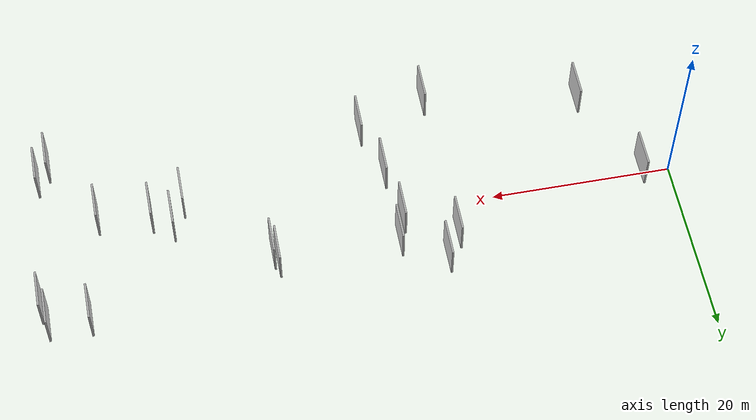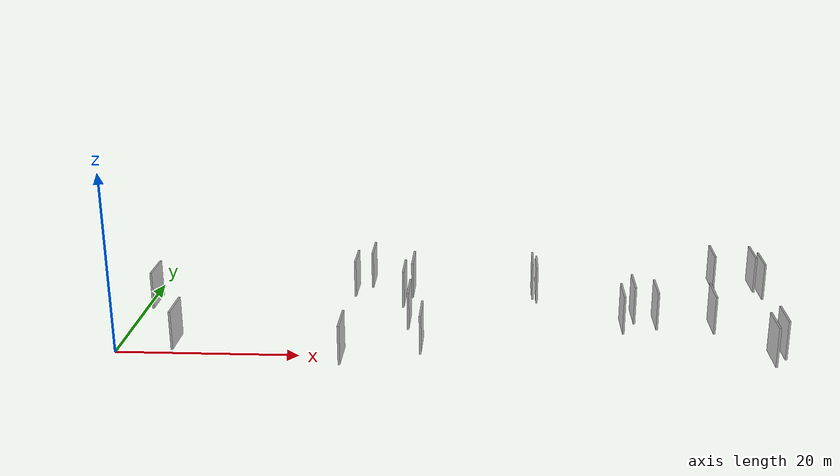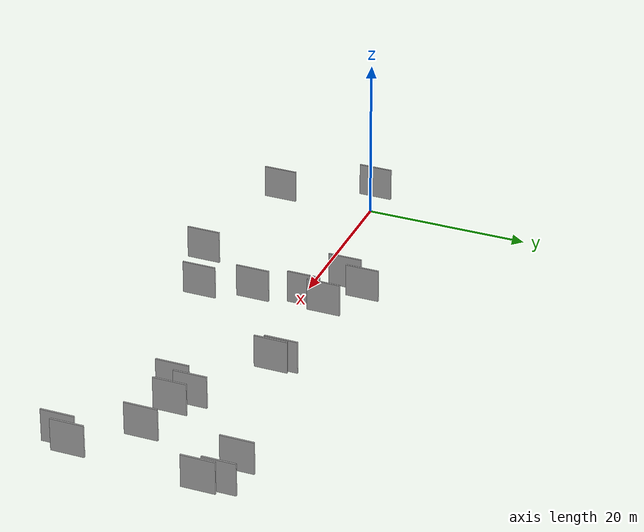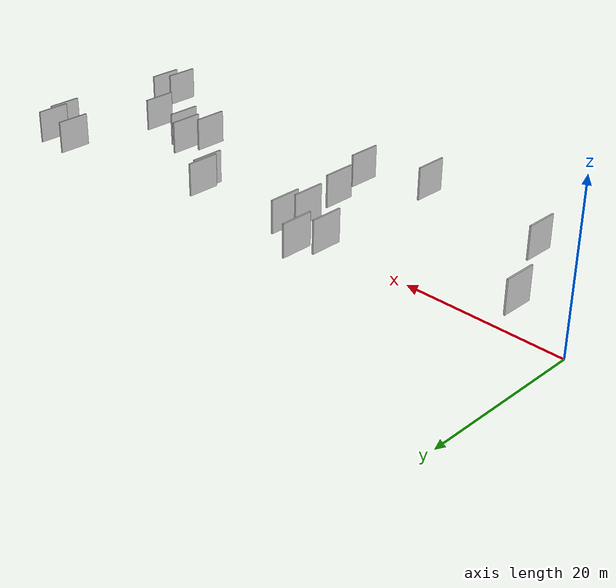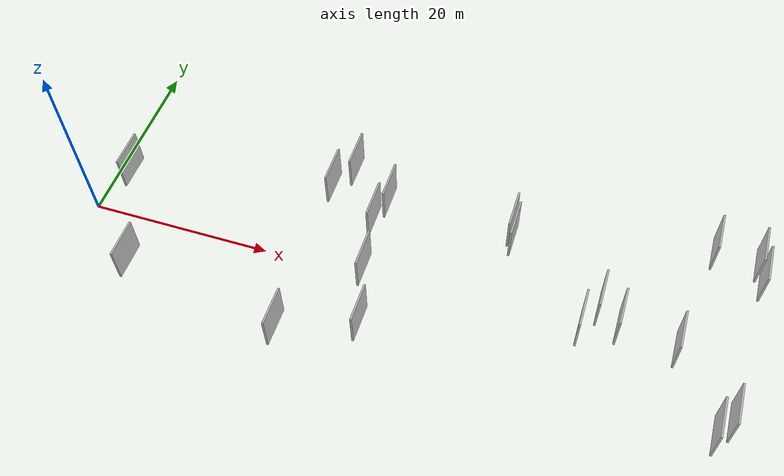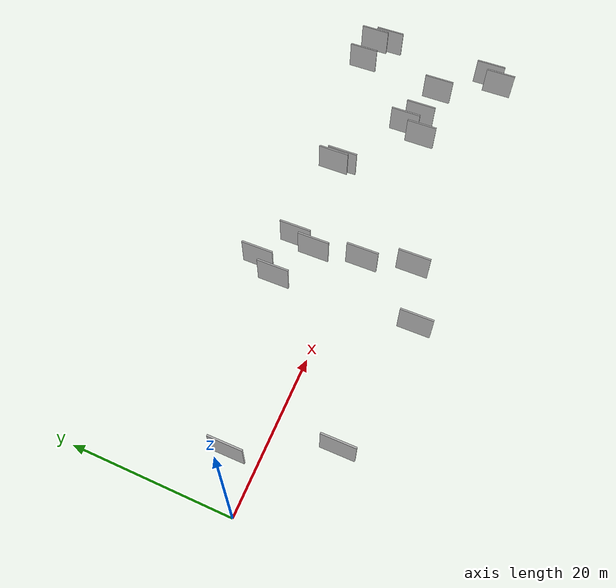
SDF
<sdf version="1.6">
 <world name="default">
  <scene>
   <sky><clouds><speed>12</speed></clouds></sky>
   <ambient>0.4 0.4 0.4 1</ambient>
   <background>0.7 0.7 0.7 1</background>
   <shadows>1</shadows>
  </scene>
  <gravity>0 0 -9.8066</gravity>
  <magnetic_field>6e-06 2.3e-05 -4.2e-05</magnetic_field>
  <physics default="0" name="default_physics" type="ode">
   <ode>
    <solver>
     <type>quick</type>
     <iters>10</iters>
     <sor>1.0</sor>
     <use_dynamic_moi_rescaling>0</use_dynamic_moi_rescaling>
    </solver>
    <constraints>
     <cfm>0</cfm>
     <erp>0.2</erp>
     <contact_max_correcting_vel>100</contact_max_correcting_vel>
     <contact_surface_layer>0.001</contact_surface_layer>
    </constraints>
   </ode>
   <max_step_size>0.004</max_step_size>
   <real_time_factor>1</real_time_factor>
   <real_time_update_rate>250</real_time_update_rate>
  </physics>
  <light name="sun" type="directional">
   <pose>0 0 10 0 0 0</pose>
   <diffuse>0.8 0.8 0.8 1</diffuse>
   <specular>0.2 0.2 0.2 1</specular>
   <attenuation>
    <range>1000</range>
    <constant>0.9</constant>
    <linear>0.01</linear>
    <quadratic>0.001</quadratic>
   </attenuation>
   <direction>-0.5 0.1 -0.9</direction>
  </light>
  <model name="grey_wall_1">
   <static>1</static>
   <pose>53.8403 -2.2216 5.0 0.000000 0.000000 1.570796</pose>
   <link name="link">
    <pose>0 0 2.00 0 0 0</pose>
    <collision name="collision"><geometry><box><size>4.00 0.2 4.00</size></box></geometry></collision>
    <visual name="visual">
     <cast_shadows>0</cast_shadows>
     <geometry><box><size>4.00 0.2 4.00</size></box></geometry>
     <material>
      <script>
       <uri>model://HANNAS_wall/materials/scripts</uri>
       <uri>model://HANNAS_wall/materials/textures</uri>
       <name>vrc/HANNAS_wall</name>
      </script>
     </material>
    </visual>
   </link>
  </model>
  <model name="grey_wall_2">
   <static>1</static>
   <pose>27.2654 9.5845 5.0 0.000000 0.000000 1.570796</pose>
   <link name="link">
    <pose>0 0 2.00 0 0 0</pose>
    <collision name="collision"><geometry><box><size>4.00 0.2 4.00</size></box></geometry></collision>
    <visual name="visual">
     <cast_shadows>0</cast_shadows>
     <geometry><box><size>4.00 0.2 4.00</size></box></geometry>
     <material>
      <script>
       <uri>model://HANNAS_wall/materials/scripts</uri>
       <uri>model://HANNAS_wall/materials/textures</uri>
       <name>vrc/HANNAS_wall</name>
      </script>
     </material>
    </visual>
   </link>
  </model>
  <model name="grey_wall_3">
   <static>1</static>
   <pose>33.6420 -7.9944 5.0 0.000000 0.000000 1.570796</pose>
   <link name="link">
    <pose>0 0 2.00 0 0 0</pose>
    <collision name="collision"><geometry><box><size>4.00 0.2 4.00</size></box></geometry></collision>
    <visual name="visual">
     <cast_shadows>0</cast_shadows>
     <geometry><box><size>4.00 0.2 4.00</size></box></geometry>
     <material>
      <script>
       <uri>model://HANNAS_wall/materials/scripts</uri>
       <uri>model://HANNAS_wall/materials/textures</uri>
       <name>vrc/HANNAS_wall</name>
      </script>
     </material>
    </visual>
   </link>
  </model>
  <model name="grey_wall_4">
   <static>1</static>
   <pose>26.0785 -10.7905 5.0 0.000000 0.000000 1.570796</pose>
   <link name="link">
    <pose>0 0 2.00 0 0 0</pose>
    <collision name="collision"><geometry><box><size>4.00 0.2 4.00</size></box></geometry></collision>
    <visual name="visual">
     <cast_shadows>0</cast_shadows>
     <geometry><box><size>4.00 0.2 4.00</size></box></geometry>
     <material>
      <script>
       <uri>model://HANNAS_wall/materials/scripts</uri>
       <uri>model://HANNAS_wall/materials/textures</uri>
       <name>vrc/HANNAS_wall</name>
      </script>
     </material>
    </visual>
   </link>
  </model>
  <model name="grey_wall_5">
   <static>1</static>
   <pose>9.2703 -8.0717 5.0 0.000000 0.000000 1.570796</pose>
   <link name="link">
    <pose>0 0 2.00 0 0 0</pose>
    <collision name="collision"><geometry><box><size>4.00 0.2 4.00</size></box></geometry></collision>
    <visual name="visual">
     <cast_shadows>0</cast_shadows>
     <geometry><box><size>4.00 0.2 4.00</size></box></geometry>
     <material>
      <script>
       <uri>model://HANNAS_wall/materials/scripts</uri>
       <uri>model://HANNAS_wall/materials/textures</uri>
       <name>vrc/HANNAS_wall</name>
      </script>
     </material>
    </visual>
   </link>
  </model>
  <model name="grey_wall_6">
   <static>1</static>
   <pose>45.3317 5.8396 5.0 0.000000 0.000000 1.570796</pose>
   <link name="link">
    <pose>0 0 2.00 0 0 0</pose>
    <collision name="collision"><geometry><box><size>4.00 0.2 4.00</size></box></geometry></collision>
    <visual name="visual">
     <cast_shadows>0</cast_shadows>
     <geometry><box><size>4.00 0.2 4.00</size></box></geometry>
     <material>
      <script>
       <uri>model://HANNAS_wall/materials/scripts</uri>
       <uri>model://HANNAS_wall/materials/textures</uri>
       <name>vrc/HANNAS_wall</name>
      </script>
     </material>
    </visual>
   </link>
  </model>
  <model name="grey_wall_7">
   <static>1</static>
   <pose>55.2078 0.4994 5.0 0.000000 0.000000 1.570796</pose>
   <link name="link">
    <pose>0 0 2.00 0 0 0</pose>
    <collision name="collision"><geometry><box><size>4.00 0.2 4.00</size></box></geometry></collision>
    <visual name="visual">
     <cast_shadows>0</cast_shadows>
     <geometry><box><size>4.00 0.2 4.00</size></box></geometry>
     <material>
      <script>
       <uri>model://HANNAS_wall/materials/scripts</uri>
       <uri>model://HANNAS_wall/materials/textures</uri>
       <name>vrc/HANNAS_wall</name>
      </script>
     </material>
    </visual>
   </link>
  </model>
  <model name="grey_wall_8">
   <static>1</static>
   <pose>4.5023 2.3879 5.0 0.000000 0.000000 1.570796</pose>
   <link name="link">
    <pose>0 0 2.00 0 0 0</pose>
    <collision name="collision"><geometry><box><size>4.00 0.2 4.00</size></box></geometry></collision>
    <visual name="visual">
     <cast_shadows>0</cast_shadows>
     <geometry><box><size>4.00 0.2 4.00</size></box></geometry>
     <material>
      <script>
       <uri>model://HANNAS_wall/materials/scripts</uri>
       <uri>model://HANNAS_wall/materials/textures</uri>
       <name>vrc/HANNAS_wall</name>
      </script>
     </material>
    </visual>
   </link>
  </model>
  <model name="grey_wall_9">
   <static>1</static>
   <pose>25.6572 6.8252 5.0 0.000000 0.000000 1.570796</pose>
   <link name="link">
    <pose>0 0 2.00 0 0 0</pose>
    <collision name="collision"><geometry><box><size>4.00 0.2 4.00</size></box></geometry></collision>
    <visual name="visual">
     <cast_shadows>0</cast_shadows>
     <geometry><box><size>4.00 0.2 4.00</size></box></geometry>
     <material>
      <script>
       <uri>model://HANNAS_wall/materials/scripts</uri>
       <uri>model://HANNAS_wall/materials/textures</uri>
       <name>vrc/HANNAS_wall</name>
      </script>
     </material>
    </visual>
   </link>
  </model>
  <model name="grey_wall_10">
   <static>1</static>
   <pose>63.0235 -1.7782 5.0 0.000000 0.000000 1.570796</pose>
   <link name="link">
    <pose>0 0 2.00 0 0 0</pose>
    <collision name="collision"><geometry><box><size>4.00 0.2 4.00</size></box></geometry></collision>
    <visual name="visual">
     <cast_shadows>0</cast_shadows>
     <geometry><box><size>4.00 0.2 4.00</size></box></geometry>
     <material>
      <script>
       <uri>model://HANNAS_wall/materials/scripts</uri>
       <uri>model://HANNAS_wall/materials/textures</uri>
       <name>vrc/HANNAS_wall</name>
      </script>
     </material>
    </visual>
   </link>
  </model>
  <model name="grey_wall_11">
   <static>1</static>
   <pose>69.8757 7.9384 5.0 0.000000 0.000000 1.570796</pose>
   <link name="link">
    <pose>0 0 2.00 0 0 0</pose>
    <collision name="collision"><geometry><box><size>4.00 0.2 4.00</size></box></geometry></collision>
    <visual name="visual">
     <cast_shadows>0</cast_shadows>
     <geometry><box><size>4.00 0.2 4.00</size></box></geometry>
     <material>
      <script>
       <uri>model://HANNAS_wall/materials/scripts</uri>
       <uri>model://HANNAS_wall/materials/textures</uri>
       <name>vrc/HANNAS_wall</name>
      </script>
     </material>
    </visual>
   </link>
  </model>
  <model name="grey_wall_12">
   <static>1</static>
   <pose>68.8496 -7.6963 5.0 0.000000 0.000000 1.570796</pose>
   <link name="link">
    <pose>0 0 2.00 0 0 0</pose>
    <collision name="collision"><geometry><box><size>4.00 0.2 4.00</size></box></geometry></collision>
    <visual name="visual">
     <cast_shadows>0</cast_shadows>
     <geometry><box><size>4.00 0.2 4.00</size></box></geometry>
     <material>
      <script>
       <uri>model://HANNAS_wall/materials/scripts</uri>
       <uri>model://HANNAS_wall/materials/textures</uri>
       <name>vrc/HANNAS_wall</name>
      </script>
     </material>
    </visual>
   </link>
  </model>
  <model name="grey_wall_13">
   <static>1</static>
   <pose>32.0308 -2.0219 5.0 0.000000 0.000000 1.570796</pose>
   <link name="link">
    <pose>0 0 2.00 0 0 0</pose>
    <collision name="collision"><geometry><box><size>4.00 0.2 4.00</size></box></geometry></collision>
    <visual name="visual">
     <cast_shadows>0</cast_shadows>
     <geometry><box><size>4.00 0.2 4.00</size></box></geometry>
     <material>
      <script>
       <uri>model://HANNAS_wall/materials/scripts</uri>
       <uri>model://HANNAS_wall/materials/textures</uri>
       <name>vrc/HANNAS_wall</name>
      </script>
     </material>
    </visual>
   </link>
  </model>
  <model name="grey_wall_14">
   <static>1</static>
   <pose>67.5826 -9.4188 5.0 0.000000 0.000000 1.570796</pose>
   <link name="link">
    <pose>0 0 2.00 0 0 0</pose>
    <collision name="collision"><geometry><box><size>4.00 0.2 4.00</size></box></geometry></collision>
    <visual name="visual">
     <cast_shadows>0</cast_shadows>
     <geometry><box><size>4.00 0.2 4.00</size></box></geometry>
     <material>
      <script>
       <uri>model://HANNAS_wall/materials/scripts</uri>
       <uri>model://HANNAS_wall/materials/textures</uri>
       <name>vrc/HANNAS_wall</name>
      </script>
     </material>
    </visual>
   </link>
  </model>
  <model name="grey_wall_15">
   <static>1</static>
   <pose>57.3546 -0.9714 5.0 0.000000 0.000000 1.570796</pose>
   <link name="link">
    <pose>0 0 2.00 0 0 0</pose>
    <collision name="collision"><geometry><box><size>4.00 0.2 4.00</size></box></geometry></collision>
    <visual name="visual">
     <cast_shadows>0</cast_shadows>
     <geometry><box><size>4.00 0.2 4.00</size></box></geometry>
     <material>
      <script>
       <uri>model://HANNAS_wall/materials/scripts</uri>
       <uri>model://HANNAS_wall/materials/textures</uri>
       <name>vrc/HANNAS_wall</name>
      </script>
     </material>
    </visual>
   </link>
  </model>
  <model name="grey_wall_16">
   <static>1</static>
   <pose>44.9164 6.8927 5.0 0.000000 0.000000 1.570796</pose>
   <link name="link">
    <pose>0 0 2.00 0 0 0</pose>
    <collision name="collision"><geometry><box><size>4.00 0.2 4.00</size></box></geometry></collision>
    <visual name="visual">
     <cast_shadows>0</cast_shadows>
     <geometry><box><size>4.00 0.2 4.00</size></box></geometry>
     <material>
      <script>
       <uri>model://HANNAS_wall/materials/scripts</uri>
       <uri>model://HANNAS_wall/materials/textures</uri>
       <name>vrc/HANNAS_wall</name>
      </script>
     </material>
    </visual>
   </link>
  </model>
  <model name="grey_wall_17">
   <static>1</static>
   <pose>64.9550 10.2667 5.0 0.000000 0.000000 1.570796</pose>
   <link name="link">
    <pose>0 0 2.00 0 0 0</pose>
    <collision name="collision"><geometry><box><size>4.00 0.2 4.00</size></box></geometry></collision>
    <visual name="visual">
     <cast_shadows>0</cast_shadows>
     <geometry><box><size>4.00 0.2 4.00</size></box></geometry>
     <material>
      <script>
       <uri>model://HANNAS_wall/materials/scripts</uri>
       <uri>model://HANNAS_wall/materials/textures</uri>
       <name>vrc/HANNAS_wall</name>
      </script>
     </material>
    </visual>
   </link>
  </model>
  <model name="grey_wall_18">
   <static>1</static>
   <pose>69.3346 10.0881 5.0 0.000000 0.000000 1.570796</pose>
   <link name="link">
    <pose>0 0 2.00 0 0 0</pose>
    <collision name="collision"><geometry><box><size>4.00 0.2 4.00</size></box></geometry></collision>
    <visual name="visual">
     <cast_shadows>0</cast_shadows>
     <geometry><box><size>4.00 0.2 4.00</size></box></geometry>
     <material>
      <script>
       <uri>model://HANNAS_wall/materials/scripts</uri>
       <uri>model://HANNAS_wall/materials/textures</uri>
       <name>vrc/HANNAS_wall</name>
      </script>
     </material>
    </visual>
   </link>
  </model>
  <model name="grey_wall_19">
   <static>1</static>
   <pose>31.8856 6.6641 5.0 0.000000 0.000000 1.570796</pose>
   <link name="link">
    <pose>0 0 2.00 0 0 0</pose>
    <collision name="collision"><geometry><box><size>4.00 0.2 4.00</size></box></geometry></collision>
    <visual name="visual">
     <cast_shadows>0</cast_shadows>
     <geometry><box><size>4.00 0.2 4.00</size></box></geometry>
     <material>
      <script>
       <uri>model://HANNAS_wall/materials/scripts</uri>
       <uri>model://HANNAS_wall/materials/textures</uri>
       <name>vrc/HANNAS_wall</name>
      </script>
     </material>
    </visual>
   </link>
  </model>
  <model name="grey_wall_20">
   <static>1</static>
   <pose>31.0880 3.9325 5.0 0.000000 0.000000 1.570796</pose>
   <link name="link">
    <pose>0 0 2.00 0 0 0</pose>
    <collision name="collision"><geometry><box><size>4.00 0.2 4.00</size></box></geometry></collision>
    <visual name="visual">
     <cast_shadows>0</cast_shadows>
     <geometry><box><size>4.00 0.2 4.00</size></box></geometry>
     <material>
      <script>
       <uri>model://HANNAS_wall/materials/scripts</uri>
       <uri>model://HANNAS_wall/materials/textures</uri>
       <name>vrc/HANNAS_wall</name>
      </script>
     </material>
    </visual>
   </link>
  </model>
 </world>
</sdf>
